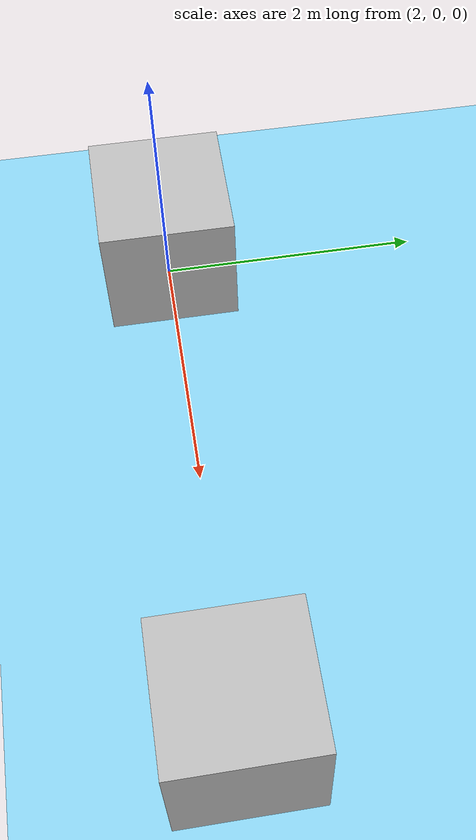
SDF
<?xml version="1.0" ?>
<sdf version="1.9">
  <world name="duniya_ek">

    <scene>
      <ambient>0.4 0.4 0.4 1.0</ambient>
      <background>0.7 0.7 0.7 1.0</background>
      <shadows>true</shadows>
    </scene>

    <light name="sun" type="directional">
      <cast_shadows>true</cast_shadows>
      <pose>0 0 10 0 0 0</pose>
      <diffuse>1 1 1 1</diffuse>
      <specular>0.1 0.1 0.1 1</specular>
      <direction>-0.5 0.1 -0.9</direction>
    </light>

    <model name="ground">
      <static>true</static>
      <link name="link">
        <collision name="collision">
          <geometry>
            <plane>
              <normal>0 0 1</normal>
              <size>100 100</size>
            </plane>
          </geometry>
        </collision>
        <visual name="visual">
          <geometry>
            <plane>
              <normal>0 0 1</normal>
              <size>100 100</size>
            </plane>
          </geometry>
          <material>
            <ambient>0.53 0.81 0.92 1</ambient>
            <diffuse>0.53 0.81 0.92 1</diffuse>
          </material>
        </visual>
      </link>
    </model>

    <model name="box1">
      <static>true</static>
      <pose>2 0 0.5 0 0 0</pose>
      <link name="link">
        <collision name="collision">
          <geometry>
            <box>
              <size>1 1 1</size>
            </box>
          </geometry>
        </collision>
        <visual name="visual">
          <geometry>
            <box>
              <size>1 1 1</size>
            </box>
          </geometry>
        </visual>
      </link>
    </model>

    <model name="box2">
      <static>true</static>
      <pose>6 0 0.5 0 0 0</pose>
      <link name="link">
        <collision name="collision">
          <geometry>
            <box>
              <size>1 1 1</size>
            </box>
          </geometry>
        </collision>
        <visual name="visual">
          <geometry>
            <box>
              <size>1 1 1</size>
            </box>
          </geometry>
        </visual>
      </link>
    </model>

  </world>
</sdf>
